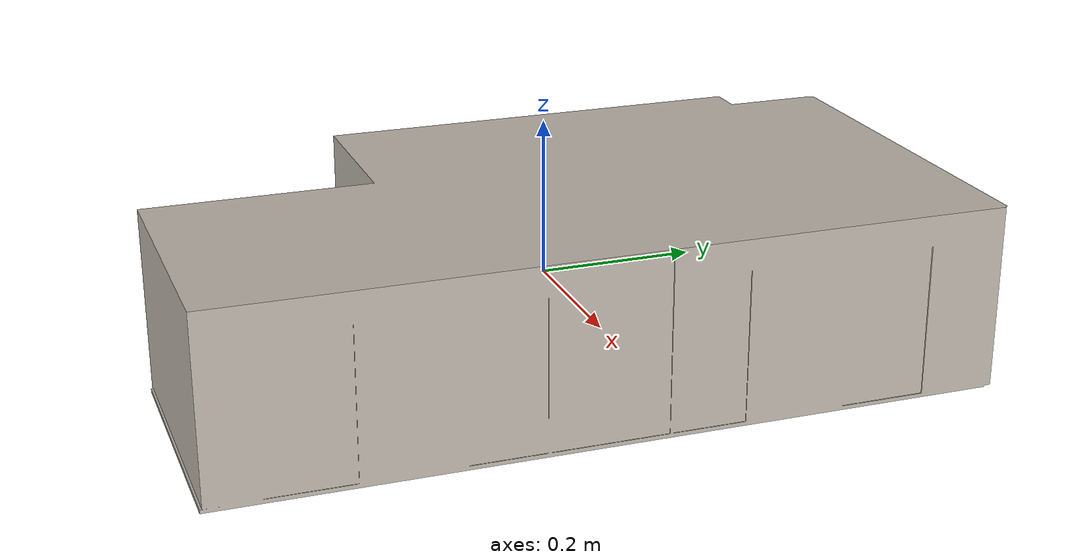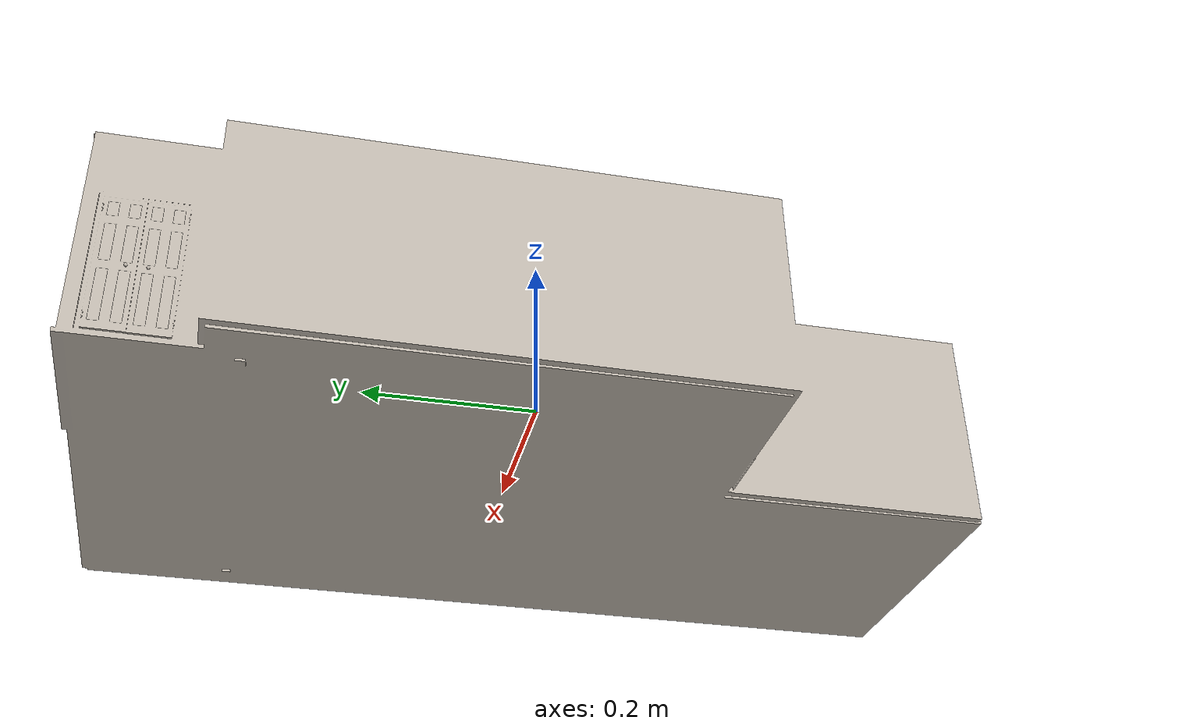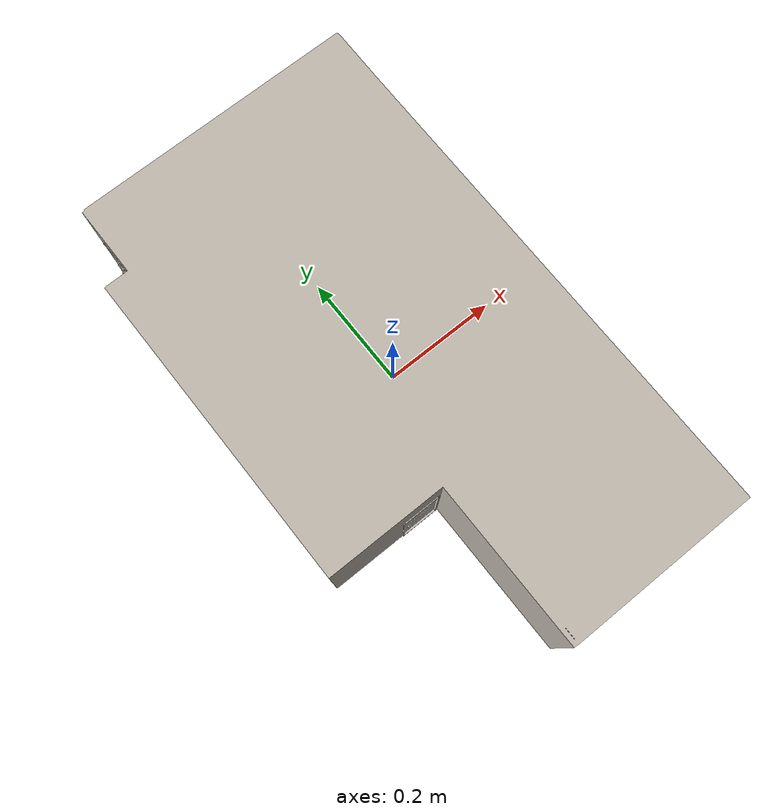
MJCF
<mujoco model="Stage_v3_sc1_staging">
  <asset>
  <mesh file="visual/model_normalized_0.obj" name="model_normalized_0_vis" scale="1.0 1.0 1.0" /><mesh file="collision/model_normalized_collision_22.obj" name="model_normalized_collision_22._coll" scale="1.0 1.0 1.0" /><mesh file="collision/model_normalized_collision_23.obj" name="model_normalized_collision_23._coll" scale="1.0 1.0 1.0" /><mesh file="collision/model_normalized_collision_21.obj" name="model_normalized_collision_21._coll" scale="1.0 1.0 1.0" /><mesh file="collision/model_normalized_collision_20.obj" name="model_normalized_collision_20._coll" scale="1.0 1.0 1.0" /><mesh file="collision/model_normalized_collision_24.obj" name="model_normalized_collision_24._coll" scale="1.0 1.0 1.0" /><mesh file="collision/model_normalized_collision_30.obj" name="model_normalized_collision_30._coll" scale="1.0 1.0 1.0" /><mesh file="collision/model_normalized_collision_18.obj" name="model_normalized_collision_18._coll" scale="1.0 1.0 1.0" /><mesh file="collision/model_normalized_collision_19.obj" name="model_normalized_collision_19._coll" scale="1.0 1.0 1.0" /><mesh file="collision/model_normalized_collision_31.obj" name="model_normalized_collision_31._coll" scale="1.0 1.0 1.0" /><mesh file="collision/model_normalized_collision_25.obj" name="model_normalized_collision_25._coll" scale="1.0 1.0 1.0" /><mesh file="collision/model_normalized_collision_27.obj" name="model_normalized_collision_27._coll" scale="1.0 1.0 1.0" /><mesh file="collision/model_normalized_collision_26.obj" name="model_normalized_collision_26._coll" scale="1.0 1.0 1.0" /><mesh file="collision/model_normalized_collision_9.obj" name="model_normalized_collision_9._coll" scale="1.0 1.0 1.0" /><mesh file="collision/model_normalized_collision_8.obj" name="model_normalized_collision_8._coll" scale="1.0 1.0 1.0" /><mesh file="collision/model_normalized_collision_6.obj" name="model_normalized_collision_6._coll" scale="1.0 1.0 1.0" /><mesh file="collision/model_normalized_collision_7.obj" name="model_normalized_collision_7._coll" scale="1.0 1.0 1.0" /><mesh file="collision/model_normalized_collision_5.obj" name="model_normalized_collision_5._coll" scale="1.0 1.0 1.0" /><mesh file="collision/model_normalized_collision_4.obj" name="model_normalized_collision_4._coll" scale="1.0 1.0 1.0" /><mesh file="collision/model_normalized_collision_0.obj" name="model_normalized_collision_0._coll" scale="1.0 1.0 1.0" /><mesh file="collision/model_normalized_collision_1.obj" name="model_normalized_collision_1._coll" scale="1.0 1.0 1.0" /><mesh file="collision/model_normalized_collision_3.obj" name="model_normalized_collision_3._coll" scale="1.0 1.0 1.0" /><mesh file="collision/model_normalized_collision_2.obj" name="model_normalized_collision_2._coll" scale="1.0 1.0 1.0" /><mesh file="collision/model_normalized_collision_17.obj" name="model_normalized_collision_17._coll" scale="1.0 1.0 1.0" /><mesh file="collision/model_normalized_collision_16.obj" name="model_normalized_collision_16._coll" scale="1.0 1.0 1.0" /><mesh file="collision/model_normalized_collision_28.obj" name="model_normalized_collision_28._coll" scale="1.0 1.0 1.0" /><mesh file="collision/model_normalized_collision_14.obj" name="model_normalized_collision_14._coll" scale="1.0 1.0 1.0" /><mesh file="collision/model_normalized_collision_15.obj" name="model_normalized_collision_15._coll" scale="1.0 1.0 1.0" /><mesh file="collision/model_normalized_collision_29.obj" name="model_normalized_collision_29._coll" scale="1.0 1.0 1.0" /><mesh file="collision/model_normalized_collision_11.obj" name="model_normalized_collision_11._coll" scale="1.0 1.0 1.0" /><mesh file="collision/model_normalized_collision_10.obj" name="model_normalized_collision_10._coll" scale="1.0 1.0 1.0" /><mesh file="collision/model_normalized_collision_12.obj" name="model_normalized_collision_12._coll" scale="1.0 1.0 1.0" /><mesh file="collision/model_normalized_collision_13.obj" name="model_normalized_collision_13._coll" scale="1.0 1.0 1.0" /><texture type="2d" name="M_RC_Apt_Remake.008" file="visual/M_RC_Apt_Remake.008.png" /><material name="M_RC_Apt_Remake.008" texture="M_RC_Apt_Remake.008" specular="0.4000000000000001" shininess="0.001" /></asset>
  <worldbody>
    <body>
      <body name="object">
      <geom solimp="0.998 0.998 0.001" solref="0.001 1" density="100" friction="0.95 0.3 0.1" type="mesh" mesh="model_normalized_0_vis" conaffinity="0" contype="0" group="1" material="M_RC_Apt_Remake.008" /><geom solimp="0.998 0.998 0.001" solref="0.001 1" density="100" friction="0.95 0.3 0.1" type="mesh" mesh="model_normalized_collision_22._coll" group="0" rgba="0.8 0.8 0.8 0.0" /><geom solimp="0.998 0.998 0.001" solref="0.001 1" density="100" friction="0.95 0.3 0.1" type="mesh" mesh="model_normalized_collision_23._coll" group="0" rgba="0.8 0.8 0.8 0.0" /><geom solimp="0.998 0.998 0.001" solref="0.001 1" density="100" friction="0.95 0.3 0.1" type="mesh" mesh="model_normalized_collision_21._coll" group="0" rgba="0.8 0.8 0.8 0.0" /><geom solimp="0.998 0.998 0.001" solref="0.001 1" density="100" friction="0.95 0.3 0.1" type="mesh" mesh="model_normalized_collision_20._coll" group="0" rgba="0.8 0.8 0.8 0.0" /><geom solimp="0.998 0.998 0.001" solref="0.001 1" density="100" friction="0.95 0.3 0.1" type="mesh" mesh="model_normalized_collision_24._coll" group="0" rgba="0.8 0.8 0.8 0.0" /><geom solimp="0.998 0.998 0.001" solref="0.001 1" density="100" friction="0.95 0.3 0.1" type="mesh" mesh="model_normalized_collision_30._coll" group="0" rgba="0.8 0.8 0.8 0.0" /><geom solimp="0.998 0.998 0.001" solref="0.001 1" density="100" friction="0.95 0.3 0.1" type="mesh" mesh="model_normalized_collision_18._coll" group="0" rgba="0.8 0.8 0.8 0.0" /><geom solimp="0.998 0.998 0.001" solref="0.001 1" density="100" friction="0.95 0.3 0.1" type="mesh" mesh="model_normalized_collision_19._coll" group="0" rgba="0.8 0.8 0.8 0.0" /><geom solimp="0.998 0.998 0.001" solref="0.001 1" density="100" friction="0.95 0.3 0.1" type="mesh" mesh="model_normalized_collision_31._coll" group="0" rgba="0.8 0.8 0.8 0.0" /><geom solimp="0.998 0.998 0.001" solref="0.001 1" density="100" friction="0.95 0.3 0.1" type="mesh" mesh="model_normalized_collision_25._coll" group="0" rgba="0.8 0.8 0.8 0.0" /><geom solimp="0.998 0.998 0.001" solref="0.001 1" density="100" friction="0.95 0.3 0.1" type="mesh" mesh="model_normalized_collision_27._coll" group="0" rgba="0.8 0.8 0.8 0.0" /><geom solimp="0.998 0.998 0.001" solref="0.001 1" density="100" friction="0.95 0.3 0.1" type="mesh" mesh="model_normalized_collision_26._coll" group="0" rgba="0.8 0.8 0.8 0.0" /><geom solimp="0.998 0.998 0.001" solref="0.001 1" density="100" friction="0.95 0.3 0.1" type="mesh" mesh="model_normalized_collision_9._coll" group="0" rgba="0.8 0.8 0.8 0.0" /><geom solimp="0.998 0.998 0.001" solref="0.001 1" density="100" friction="0.95 0.3 0.1" type="mesh" mesh="model_normalized_collision_8._coll" group="0" rgba="0.8 0.8 0.8 0.0" /><geom solimp="0.998 0.998 0.001" solref="0.001 1" density="100" friction="0.95 0.3 0.1" type="mesh" mesh="model_normalized_collision_6._coll" group="0" rgba="0.8 0.8 0.8 0.0" /><geom solimp="0.998 0.998 0.001" solref="0.001 1" density="100" friction="0.95 0.3 0.1" type="mesh" mesh="model_normalized_collision_7._coll" group="0" rgba="0.8 0.8 0.8 0.0" /><geom solimp="0.998 0.998 0.001" solref="0.001 1" density="100" friction="0.95 0.3 0.1" type="mesh" mesh="model_normalized_collision_5._coll" group="0" rgba="0.8 0.8 0.8 0.0" /><geom solimp="0.998 0.998 0.001" solref="0.001 1" density="100" friction="0.95 0.3 0.1" type="mesh" mesh="model_normalized_collision_4._coll" group="0" rgba="0.8 0.8 0.8 0.0" /><geom solimp="0.998 0.998 0.001" solref="0.001 1" density="100" friction="0.95 0.3 0.1" type="mesh" mesh="model_normalized_collision_0._coll" group="0" rgba="0.8 0.8 0.8 0.0" /><geom solimp="0.998 0.998 0.001" solref="0.001 1" density="100" friction="0.95 0.3 0.1" type="mesh" mesh="model_normalized_collision_1._coll" group="0" rgba="0.8 0.8 0.8 0.0" /><geom solimp="0.998 0.998 0.001" solref="0.001 1" density="100" friction="0.95 0.3 0.1" type="mesh" mesh="model_normalized_collision_3._coll" group="0" rgba="0.8 0.8 0.8 0.0" /><geom solimp="0.998 0.998 0.001" solref="0.001 1" density="100" friction="0.95 0.3 0.1" type="mesh" mesh="model_normalized_collision_2._coll" group="0" rgba="0.8 0.8 0.8 0.0" /><geom solimp="0.998 0.998 0.001" solref="0.001 1" density="100" friction="0.95 0.3 0.1" type="mesh" mesh="model_normalized_collision_17._coll" group="0" rgba="0.8 0.8 0.8 0.0" /><geom solimp="0.998 0.998 0.001" solref="0.001 1" density="100" friction="0.95 0.3 0.1" type="mesh" mesh="model_normalized_collision_16._coll" group="0" rgba="0.8 0.8 0.8 0.0" /><geom solimp="0.998 0.998 0.001" solref="0.001 1" density="100" friction="0.95 0.3 0.1" type="mesh" mesh="model_normalized_collision_28._coll" group="0" rgba="0.8 0.8 0.8 0.0" /><geom solimp="0.998 0.998 0.001" solref="0.001 1" density="100" friction="0.95 0.3 0.1" type="mesh" mesh="model_normalized_collision_14._coll" group="0" rgba="0.8 0.8 0.8 0.0" /><geom solimp="0.998 0.998 0.001" solref="0.001 1" density="100" friction="0.95 0.3 0.1" type="mesh" mesh="model_normalized_collision_15._coll" group="0" rgba="0.8 0.8 0.8 0.0" /><geom solimp="0.998 0.998 0.001" solref="0.001 1" density="100" friction="0.95 0.3 0.1" type="mesh" mesh="model_normalized_collision_29._coll" group="0" rgba="0.8 0.8 0.8 0.0" /><geom solimp="0.998 0.998 0.001" solref="0.001 1" density="100" friction="0.95 0.3 0.1" type="mesh" mesh="model_normalized_collision_11._coll" group="0" rgba="0.8 0.8 0.8 0.0" /><geom solimp="0.998 0.998 0.001" solref="0.001 1" density="100" friction="0.95 0.3 0.1" type="mesh" mesh="model_normalized_collision_10._coll" group="0" rgba="0.8 0.8 0.8 0.0" /><geom solimp="0.998 0.998 0.001" solref="0.001 1" density="100" friction="0.95 0.3 0.1" type="mesh" mesh="model_normalized_collision_12._coll" group="0" rgba="0.8 0.8 0.8 0.0" /><geom solimp="0.998 0.998 0.001" solref="0.001 1" density="100" friction="0.95 0.3 0.1" type="mesh" mesh="model_normalized_collision_13._coll" group="0" rgba="0.8 0.8 0.8 0.0" /></body>
      <site rgba="0 0 0 0" size="0.005" pos="-0.00040162355696610197 1.7674740671047573e-08 -0.12895003883152117" name="bottom_site" />
      <site rgba="0 0 0 0" size="0.005" pos="-0.00040162355696610197 1.7674740671047573e-08 0.12862571747380208" name="top_site" />
      <site rgba="0 0 0 0" size="0.005" pos="0.287477162920125 0.5075757727037697 -0.00016216067885956031" name="horizontal_radius_site" />
    </body>
  </worldbody>
</mujoco>
